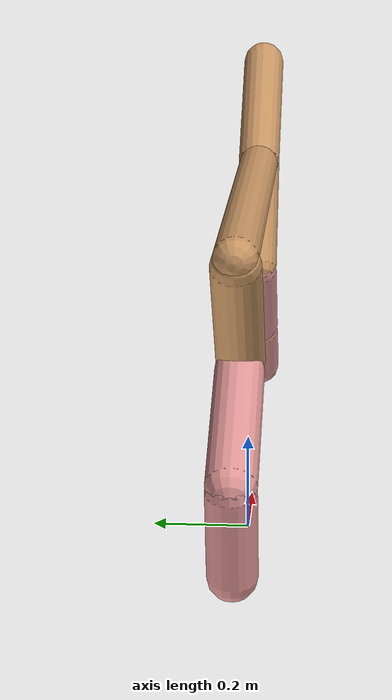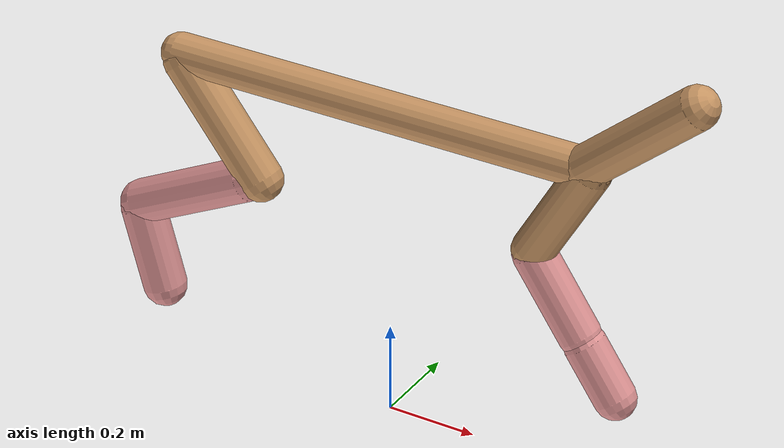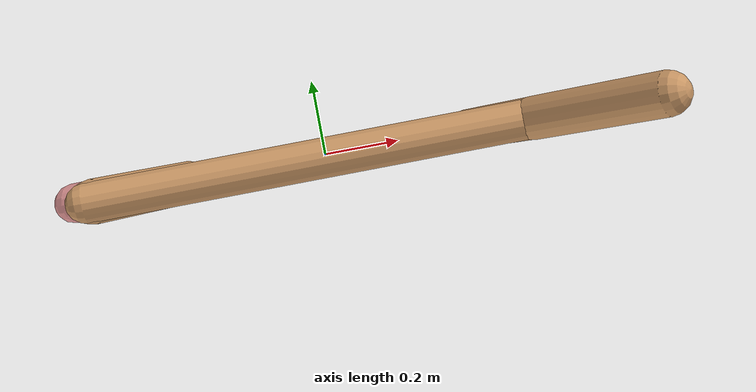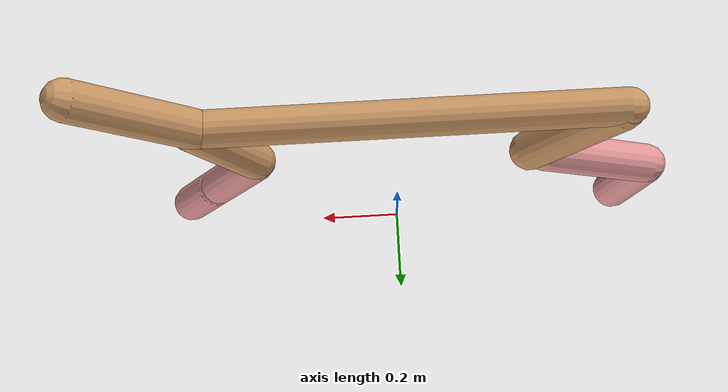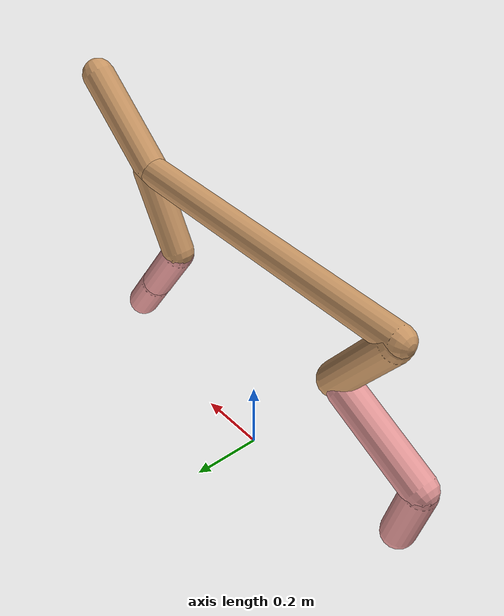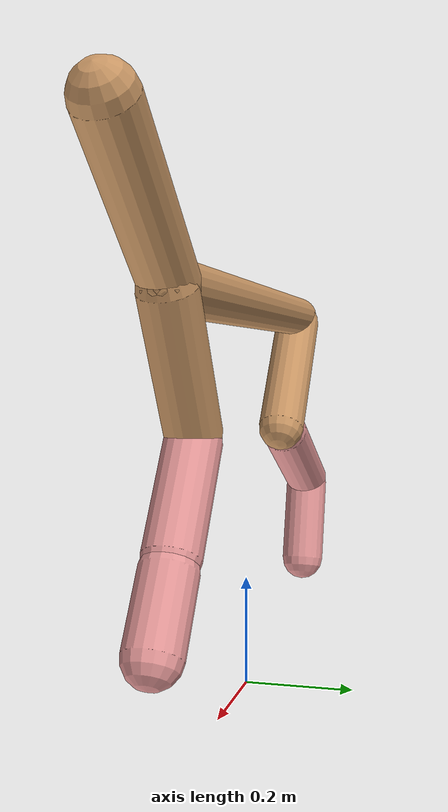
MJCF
<mujoco model="cheetah">
  <compiler angle="radian" coordinate="local" inertiafromgeom="true" settotalmass="14" />
  <default>
    <joint armature=".1" damping=".01" limited="true" solimplimit="0 .8 .03" solreflimit=".02 1" stiffness="8" />
    <geom conaffinity="0" condim="3" contype="1" friction="0.8 .1 .1" rgba="0.8 0.6 .4 1" solimp="0.0 0.8 0.01" solref="0.02 1" />
    <motor ctrllimited="true" ctrlrange="-1 1" />
  </default>
  <size nstack="300000" nuser_geom="1" />
  <option gravity="0 0 -9.81" timestep="0.01" />
  <worldbody>
    <body name="torso" pos="0.0 0.0 0.7060898072498941">
      <joint armature="0" axis="1 0 0" damping="0" limited="false" name="ignorex" pos="0 0 0" stiffness="0" type="slide" />
      <joint armature="0" axis="0 0 1" damping="0" limited="false" name="ignorez" pos="0 0 0" stiffness="0" type="slide" />
      <joint armature="0" axis="0 1 0" damping="0" limited="false" name="ignorey" pos="0 0 0" stiffness="0" type="hinge" />
      <geom fromto="-0.5 0.0 0.0 0.45503389549274215 0.0 0.0" name="torso" size="0.04222907008409217" type="capsule" />
      <geom axisangle="0 1 0 .87" name="head" pos="0.5550338954927422 0.0 0.1" size="0.04542048797113618 0.15" type="capsule" />

      <body name="bthigh" pos="-.5 0 0">
        <joint axis="0 1 0" damping="6" name="bthigh" pos="0 0 0" range="-.52 1.05" stiffness="240" type="hinge" />
        <geom axisangle="0 1 0 -3.8" name="bthigh" pos="0.10045626105652995 0.0 -0.13059313937348893" size="0.04803543135216347 0.14574832377223274" type="capsule" />
        <body name="bshin" pos="0.1609125221130599 0.0 -0.25118627874697785">
          <joint axis="0 1 0" damping="4.5" name="bshin" pos="0 0 0" range="-.785 .785" stiffness="180" type="hinge" />
          <geom axisangle="0 1 0 -2.03" name="bshin" pos="-0.14069240116850684 0.0 -0.07034620058425342" rgba="0.9 0.6 0.6 1" size="0.04803543135216347 0.1507741280402408" type="capsule" />
          <body name="bfoot" pos="-0.2813848023370137 0.0 -0.14069240116850684">
            <joint axis="0 1 0" damping="3" name="bfoot" pos="0 0 0" range="-.4 .785" stiffness="120" type="hinge" />
            <geom axisangle="0 1 0 -.27" name="bfoot" pos="0.030143338342468518 0.0 -0.09746346064064822" rgba="0.9 0.6 0.6 1" size="0.04803543135216347 0.0944851202385509" type="capsule" />
            <inertial mass="10" />
          </body>
        </body>
      </body>
      <body name="fthigh" pos="0.4550338954927422 0.0 0.0">
        <joint axis="0 1 0" damping="4.5" name="fthigh" pos="0 0 0" range="-1.5 0.8" stiffness="180" type="hinge" />
        <geom axisangle="0 1 0 .52" name="fthigh" pos="-0.06426919593794048 0.0 -0.11017576446504082" size="0.04510755936658609 0.12162644650761811" type="capsule" />
        <body name="fshin" pos="-0.12853839187588095 0.0 -0.22035152893008164">
          <joint axis="0 1 0" damping="3" name="fshin" pos="0 0 0" range="-1.2 1.1" stiffness="120" type="hinge" />
          <geom axisangle="0 1 0 -.6" name="fshin" pos="0.05969274088613601 0.0 -0.0826514873808037" rgba="0.9 0.6 0.6 1" size="0.04510755936658609 0.09693536338201142" type="capsule" />
          <body name="ffoot" pos="0.11938548177227203 0.0 -0.1653029747616074">
            <joint axis="0 1 0" damping="1.5" name="ffoot" pos="0 0 0" range="-3.1 -0.3" stiffness="60" type="hinge" />
            <geom axisangle="0 1 0 -.6" name="ffoot" pos="0.041762981373044385 0.0 -0.06496463769140239" rgba="0.9 0.6 0.6 1" size="0.04510755936658609 0.06401391921453585" type="capsule" />
            <inertial mass="10" />
          </body>
        </body>
      </body>
    </body>
  </worldbody>
  <actuator>
    <motor gear="120" joint="bthigh" name="bthigh" />
    <motor gear="90" joint="bshin" name="bshin" />
    <motor gear="60" joint="bfoot" name="bfoot" />
    <motor gear="120" joint="fthigh" name="fthigh" />
    <motor gear="60" joint="fshin" name="fshin" />
    <motor gear="30" joint="ffoot" name="ffoot" />
  </actuator>
</mujoco>
